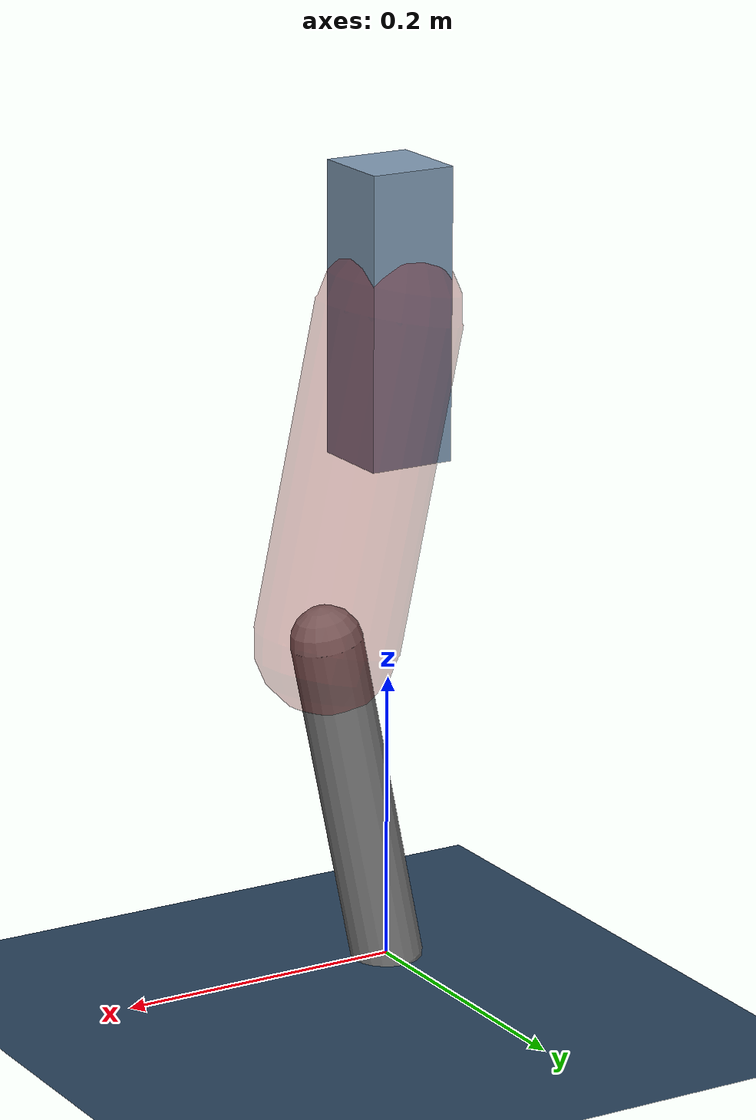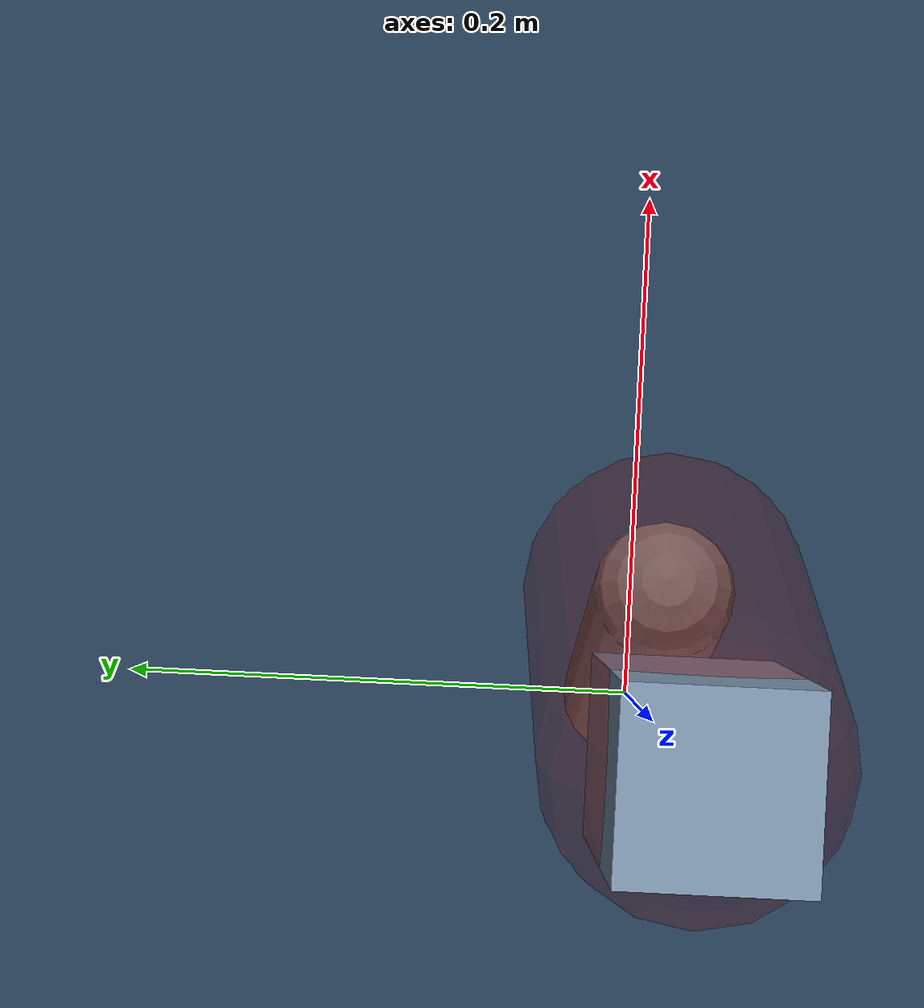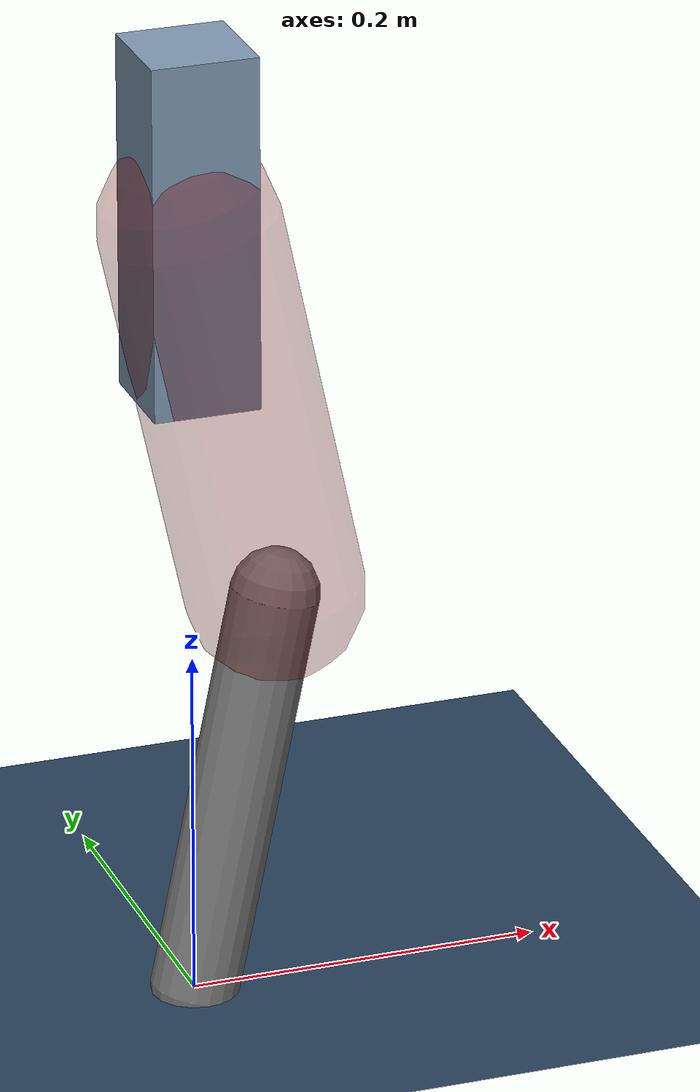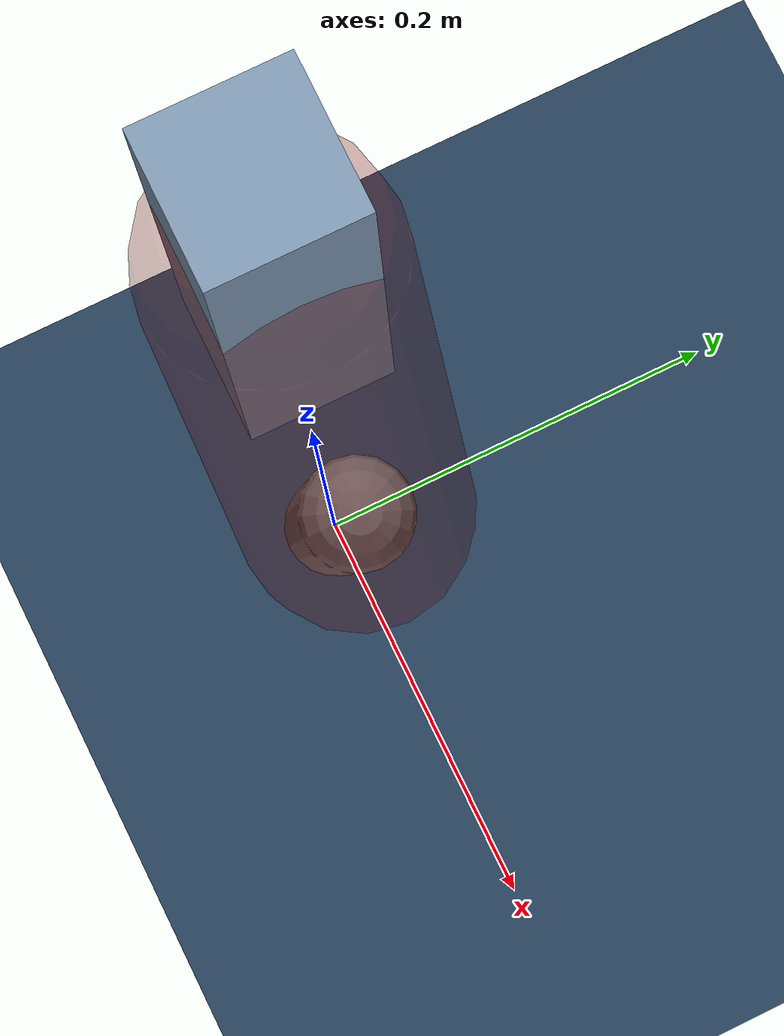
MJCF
<mujoco model="Hopper2D">
	<compiler inertiafromgeom="true" angle="radian" />
	<option timestep="0.001" integrator="implicit" cone="elliptic" solver="Newton" tolerance="1e-10" />

	<default>
		<geom contype="1" conaffinity="1" condim="3" friction="2 0.005 0.0001" solref="0.005 1" />
		<joint limited="true" damping="0.1" />
	</default>

	<asset>
		<texture name="skybox" type="skybox" builtin="gradient" rgb1=".4 .6 .8" rgb2="0 0 0" width="800" height="800" />
		<texture name="grid" type="2d" builtin="checker" rgb1=".1 .2 .3" rgb2=".2 .3 .4" width="300" height="300" mark="edge" markrgb=".2 .3 .4" />
		<material name="ground" texture="grid" texrepeat="1 1" texuniform="true" reflectance="0.1" />
		<material name="leg" rgba="0.5 0.6 0.7 1" />
	</asset>

	<worldbody>

		<geom name="floor" type="plane" size="5 5 0.25" material="ground" />

		<light directional="false" diffuse="0.8 0.8 0.8" specular="0.3 0.3 0.3" pos="0 0 2" dir="0 0 -1" />
		<light mode="targetbodycom" target="base" directional="false" diffuse="0.8 0.8 0.8" specular="0.3 0.3 0.3" pos="0 0 2" dir="0 0 -1" />

		<camera name="fixed" pos="0 -2 1" xyaxes="1 0 0 0 0 1" />
		<camera name="tracking" mode="trackcom" pos="0 -3 1" />

		<body name="root" pos="0 0 0.45570030484278246">
			<joint name="slide_x" type="slide" axis="1 0 0" range="-100 100" />
			<joint name="slide_z" type="slide" axis="0 0 1" range="0 10" />

			<body name="base" pos="0 0 0">
				<geom name="torso" type="box" size="0.03 0.03 0.1" mass="2.914" material="leg" />

				<body name="link1" pos="0 0 0" euler="0 1.3580250595484158 0">
					<joint type="hinge" axis="0 -1 0" pos="0 0 0" name="hinge1" limited="true" range="-3.14 3.14" stiffness="0" damping="0.1" />
					<geom name="thigh" type="capsule" fromto="0 0 0 0.2272113733439051 0 0" size="0.05" rgba="0.5 0 0 0.3" mass="0.7979284333597627" />

					<body name="link2" pos="0.2272113733439051 0 0" euler="0 0.4153375407897593 0">
						<joint type="hinge" axis="0 -1 0" pos="0 0 0" name="hinge2" limited="true" range="-3.14 3.14" stiffness="0" damping="0.1" />
						<geom name="shank" type="capsule" fromto="0 0 0 0.23848893149887734 0 0" size="0.025" mass="0.43299114519910187" />

					</body>
				</body>
			</body>
		</body>
	</worldbody>

	<actuator>
		<motor name="torque1" joint="hinge1" ctrlrange="-97.03477990610686 97.03477990610686" ctrllimited="true" gear="1" />
		<motor name="torque2" joint="hinge2" ctrlrange="-20.208654485868998 20.208654485868998" ctrllimited="true" gear="1" />
	</actuator>
</mujoco>
